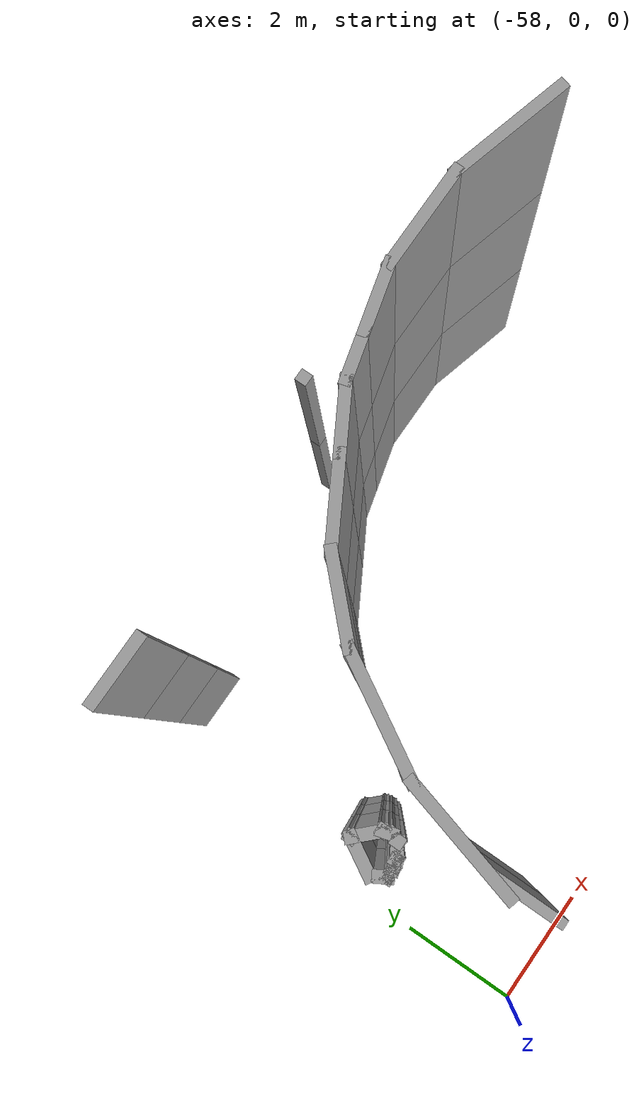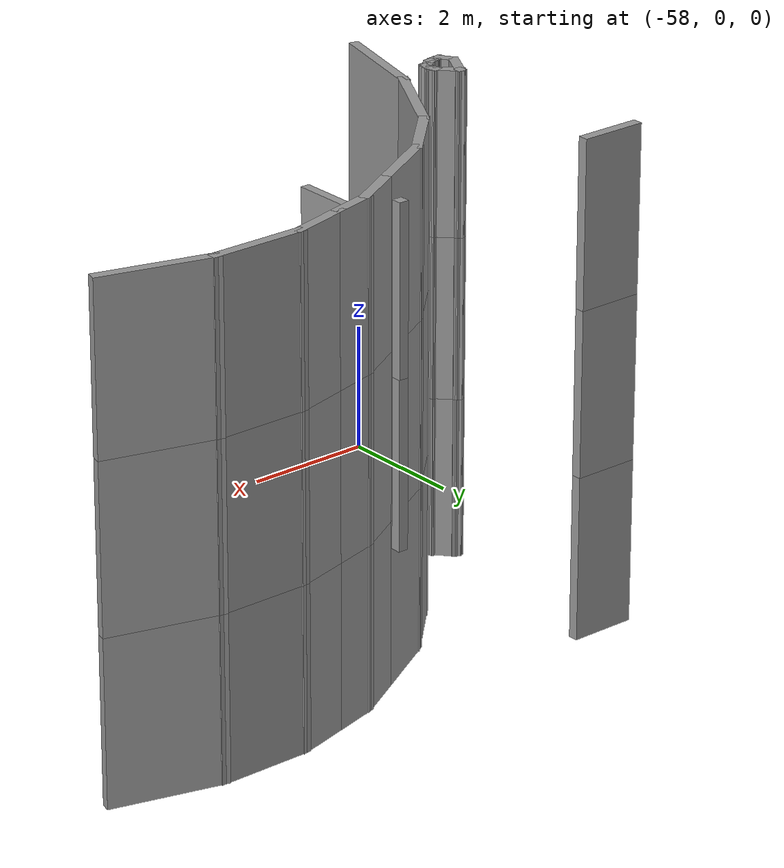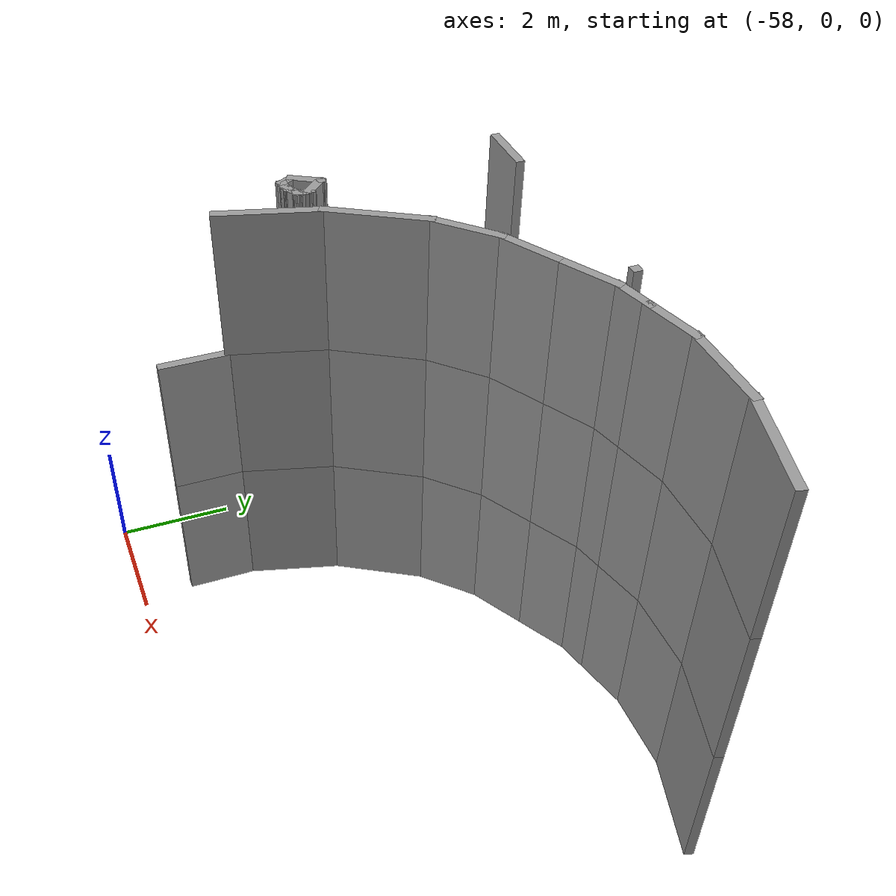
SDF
<sdf version="1.7">
 <model name="mapagazebo">
  <pose>-4.67869 9.01252 0 0 -0 0</pose>
  <link name="Wall_1036">
   <collision name="Wall_1036_Collision">
    <geometry><box><size>0.15 0.15 2.5</size></box></geometry>
    <pose>0 0 1.25 0 -0 0</pose>
   </collision>
   <visual name="Wall_1036_Visual">
    <pose>0 0 1.25 0 -0 0</pose>
    <geometry><box><size>0.15 0.15 2.5</size></box></geometry>
    <material>
     <script><uri>file://media/materials/scripts/gazebo.material</uri><name>Gazebo/Grey</name></script>
     <ambient>1 1 1 1</ambient>
    </material>
    <meta><layer>1</layer></meta>
   </visual>
   <pose>-48.1488 -1.86062 2.5 0 -0 0</pose>
  </link>
  <link name="Wall_112">
   <collision name="Wall_112_Collision">
    <geometry><box><size>1 0.15 2.5</size></box></geometry>
    <pose>0 0 1.25 0 -0 0</pose>
   </collision>
   <visual name="Wall_112_Visual">
    <pose>0 0 1.25 0 -0 0</pose>
    <geometry><box><size>1 0.15 2.5</size></box></geometry>
    <material>
     <script><uri>file://media/materials/scripts/gazebo.material</uri><name>Gazebo/Grey</name></script>
     <ambient>1 1 1 1</ambient>
    </material>
    <meta><layer>0</layer></meta>
   </visual>
   <pose>-51.9999 -2.0661 0 0 -0 0</pose>
  </link>
  <link name="Wall_1480">
   <collision name="Wall_1480_Collision">
    <geometry><box><size>1 0.15 2.5</size></box></geometry>
    <pose>0 0 1.25 0 -0 0</pose>
   </collision>
   <visual name="Wall_1480_Visual">
    <pose>0 0 1.25 0 -0 0</pose>
    <geometry><box><size>1 0.15 2.5</size></box></geometry>
    <material>
     <script><uri>file://media/materials/scripts/gazebo.material</uri><name>Gazebo/Grey</name></script>
     <ambient>1 1 1 1</ambient>
    </material>
    <meta><layer>2</layer></meta>
   </visual>
   <pose>-51.9999 -2.0661 5 0 -0 0</pose>
  </link>
  <link name="Wall_1522">
   <collision name="Wall_1522_Collision">
    <geometry><box><size>0.25 0.15 2.5</size></box></geometry>
    <pose>0 0 1.25 0 -0 0</pose>
   </collision>
   <visual name="Wall_1522_Visual">
    <pose>0 0 1.25 0 -0 0</pose>
    <geometry><box><size>0.25 0.15 2.5</size></box></geometry>
    <material>
     <script><uri>file://media/materials/scripts/gazebo.material</uri><name>Gazebo/Grey</name></script>
     <ambient>1 1 1 1</ambient>
    </material>
    <meta><layer>2</layer></meta>
   </visual>
   <pose>-52.1543 -5.71076 5 0 -0 -1.0472</pose>
  </link>
  <link name="Wall_1523">
   <collision name="Wall_1523_Collision">
    <geometry><box><size>0.15 0.15 2.5</size></box></geometry>
    <pose>0 0 1.25 0 -0 0</pose>
   </collision>
   <visual name="Wall_1523_Visual">
    <pose>0 0 1.25 0 -0 0</pose>
    <geometry><box><size>0.15 0.15 2.5</size></box></geometry>
    <material>
     <script><uri>file://media/materials/scripts/gazebo.material</uri><name>Gazebo/Grey</name></script>
     <ambient>1 1 1 1</ambient>
    </material>
    <meta><layer>2</layer></meta>
   </visual>
   <pose>-52.1293 -5.75406 5 0 -0 0</pose>
  </link>
  <link name="Wall_1524">
   <collision name="Wall_1524_Collision">
    <geometry><box><size>0.25 0.15 2.5</size></box></geometry>
    <pose>0 0 1.25 0 -0 0</pose>
   </collision>
   <visual name="Wall_1524_Visual">
    <pose>0 0 1.25 0 -0 0</pose>
    <geometry><box><size>0.25 0.15 2.5</size></box></geometry>
    <material>
     <script><uri>file://media/materials/scripts/gazebo.material</uri><name>Gazebo/Grey</name></script>
     <ambient>1 1 1 1</ambient>
    </material>
    <meta><layer>2</layer></meta>
   </visual>
   <pose>-52.0793 -5.75406 5 0 -0 0</pose>
  </link>
  <link name="Wall_1525">
   <collision name="Wall_1525_Collision">
    <geometry><box><size>0.25 0.15 2.5</size></box></geometry>
    <pose>0 0 1.25 0 -0 0</pose>
   </collision>
   <visual name="Wall_1525_Visual">
    <pose>0 0 1.25 0 -0 0</pose>
    <geometry><box><size>0.25 0.15 2.5</size></box></geometry>
    <material>
     <script><uri>file://media/materials/scripts/gazebo.material</uri><name>Gazebo/Grey</name></script>
     <ambient>1 1 1 1</ambient>
    </material>
    <meta><layer>2</layer></meta>
   </visual>
   <pose>-51.981 -5.74112 5 0 -0 0.261799</pose>
  </link>
  <link name="Wall_1526">
   <collision name="Wall_1526_Collision">
    <geometry><box><size>0.15 0.15 2.5</size></box></geometry>
    <pose>0 0 1.25 0 -0 0</pose>
   </collision>
   <visual name="Wall_1526_Visual">
    <pose>0 0 1.25 0 -0 0</pose>
    <geometry><box><size>0.15 0.15 2.5</size></box></geometry>
    <material>
     <script><uri>file://media/materials/scripts/gazebo.material</uri><name>Gazebo/Grey</name></script>
     <ambient>1 1 1 1</ambient>
    </material>
    <meta><layer>2</layer></meta>
   </visual>
   <pose>-51.9327 -5.72818 5 0 -0 0</pose>
  </link>
  <link name="Wall_1527">
   <collision name="Wall_1527_Collision">
    <geometry><box><size>0.15 0.15 2.5</size></box></geometry>
    <pose>0 0 1.25 0 -0 0</pose>
   </collision>
   <visual name="Wall_1527_Visual">
    <pose>0 0 1.25 0 -0 0</pose>
    <geometry><box><size>0.15 0.15 2.5</size></box></geometry>
    <material>
     <script><uri>file://media/materials/scripts/gazebo.material</uri><name>Gazebo/Grey</name></script>
     <ambient>1 1 1 1</ambient>
    </material>
    <meta><layer>2</layer></meta>
   </visual>
   <pose>-51.9327 -5.72818 5 0 -0 0</pose>
  </link>
  <link name="Wall_1528">
   <collision name="Wall_1528_Collision">
    <geometry><box><size>0.25 0.15 2.5</size></box></geometry>
    <pose>0 0 1.25 0 -0 0</pose>
   </collision>
   <visual name="Wall_1528_Visual">
    <pose>0 0 1.25 0 -0 0</pose>
    <geometry><box><size>0.25 0.15 2.5</size></box></geometry>
    <material>
     <script><uri>file://media/materials/scripts/gazebo.material</uri><name>Gazebo/Grey</name></script>
     <ambient>1 1 1 1</ambient>
    </material>
    <meta><layer>2</layer></meta>
   </visual>
   <pose>-51.8894 -5.70318 5 0 -0 0.523599</pose>
  </link>
  <link name="Wall_1529">
   <collision name="Wall_1529_Collision">
    <geometry><box><size>0.25 0.15 2.5</size></box></geometry>
    <pose>0 0 1.25 0 -0 0</pose>
   </collision>
   <visual name="Wall_1529_Visual">
    <pose>0 0 1.25 0 -0 0</pose>
    <geometry><box><size>0.25 0.15 2.5</size></box></geometry>
    <material>
     <script><uri>file://media/materials/scripts/gazebo.material</uri><name>Gazebo/Grey</name></script>
     <ambient>1 1 1 1</ambient>
    </material>
    <meta><layer>2</layer></meta>
   </visual>
   <pose>-51.8028 -5.65318 5 0 -0 0.523599</pose>
  </link>
  <link name="Wall_1530">
   <collision name="Wall_1530_Collision">
    <geometry><box><size>0.15 0.15 2.5</size></box></geometry>
    <pose>0 0 1.25 0 -0 0</pose>
   </collision>
   <visual name="Wall_1530_Visual">
    <pose>0 0 1.25 0 -0 0</pose>
    <geometry><box><size>0.15 0.15 2.5</size></box></geometry>
    <material>
     <script><uri>file://media/materials/scripts/gazebo.material</uri><name>Gazebo/Grey</name></script>
     <ambient>1 1 1 1</ambient>
    </material>
    <meta><layer>2</layer></meta>
   </visual>
   <pose>-51.7595 -5.62818 5 0 -0 0</pose>
  </link>
  <link name="Wall_1531">
   <collision name="Wall_1531_Collision">
    <geometry><box><size>0.25 0.15 2.5</size></box></geometry>
    <pose>0 0 1.25 0 -0 0</pose>
   </collision>
   <visual name="Wall_1531_Visual">
    <pose>0 0 1.25 0 -0 0</pose>
    <geometry><box><size>0.25 0.15 2.5</size></box></geometry>
    <material>
     <script><uri>file://media/materials/scripts/gazebo.material</uri><name>Gazebo/Grey</name></script>
     <ambient>1 1 1 1</ambient>
    </material>
    <meta><layer>2</layer></meta>
   </visual>
   <pose>-51.7466 -5.57988 5 0 -0 1.309</pose>
  </link>
  <link name="Wall_1532">
   <collision name="Wall_1532_Collision">
    <geometry><box><size>0.25 0.15 2.5</size></box></geometry>
    <pose>0 0 1.25 0 -0 0</pose>
   </collision>
   <visual name="Wall_1532_Visual">
    <pose>0 0 1.25 0 -0 0</pose>
    <geometry><box><size>0.25 0.15 2.5</size></box></geometry>
    <material>
     <script><uri>file://media/materials/scripts/gazebo.material</uri><name>Gazebo/Grey</name></script>
     <ambient>1 1 1 1</ambient>
    </material>
    <meta><layer>2</layer></meta>
   </visual>
   <pose>-51.7466 -5.48329 5 0 -0 1.8326</pose>
  </link>
  <link name="Wall_1533">
   <collision name="Wall_1533_Collision">
    <geometry><box><size>0.15 0.15 2.5</size></box></geometry>
    <pose>0 0 1.25 0 -0 0</pose>
   </collision>
   <visual name="Wall_1533_Visual">
    <pose>0 0 1.25 0 -0 0</pose>
    <geometry><box><size>0.15 0.15 2.5</size></box></geometry>
    <material>
     <script><uri>file://media/materials/scripts/gazebo.material</uri><name>Gazebo/Grey</name></script>
     <ambient>1 1 1 1</ambient>
    </material>
    <meta><layer>2</layer></meta>
   </visual>
   <pose>-51.7595 -5.43499 5 0 -0 0</pose>
  </link>
  <link name="Wall_1534">
   <collision name="Wall_1534_Collision">
    <geometry><box><size>0.5 0.15 2.5</size></box></geometry>
    <pose>0 0 1.25 0 -0 0</pose>
   </collision>
   <visual name="Wall_1534_Visual">
    <pose>0 0 1.25 0 -0 0</pose>
    <geometry><box><size>0.5 0.15 2.5</size></box></geometry>
    <material>
     <script><uri>file://media/materials/scripts/gazebo.material</uri><name>Gazebo/Grey</name></script>
     <ambient>1 1 1 1</ambient>
    </material>
    <meta><layer>2</layer></meta>
   </visual>
   <pose>-51.8833 -5.31125 5 0 -0 2.35619</pose>
  </link>
  <link name="Wall_1535">
   <collision name="Wall_1535_Collision">
    <geometry><box><size>0.15 0.15 2.5</size></box></geometry>
    <pose>0 0 1.25 0 -0 0</pose>
   </collision>
   <visual name="Wall_1535_Visual">
    <pose>0 0 1.25 0 -0 0</pose>
    <geometry><box><size>0.15 0.15 2.5</size></box></geometry>
    <material>
     <script><uri>file://media/materials/scripts/gazebo.material</uri><name>Gazebo/Grey</name></script>
     <ambient>1 1 1 1</ambient>
    </material>
    <meta><layer>2</layer></meta>
   </visual>
   <pose>-52.007 -5.18751 5 0 -0 0</pose>
  </link>
  <link name="Wall_1536">
   <collision name="Wall_1536_Collision">
    <geometry><box><size>0.15 0.15 2.5</size></box></geometry>
    <pose>0 0 1.25 0 -0 0</pose>
   </collision>
   <visual name="Wall_1536_Visual">
    <pose>0 0 1.25 0 -0 0</pose>
    <geometry><box><size>0.15 0.15 2.5</size></box></geometry>
    <material>
     <script><uri>file://media/materials/scripts/gazebo.material</uri><name>Gazebo/Grey</name></script>
     <ambient>1 1 1 1</ambient>
    </material>
    <meta><layer>2</layer></meta>
   </visual>
   <pose>-52.007 -5.18751 5 0 -0 0</pose>
  </link>
  <link name="Wall_1537">
   <collision name="Wall_1537_Collision">
    <geometry><box><size>0.601825 0.15 2.5</size></box></geometry>
    <pose>0 0 1.25 0 -0 0</pose>
   </collision>
   <visual name="Wall_1537_Visual">
    <pose>0 0 1.25 0 -0 0</pose>
    <geometry><box><size>0.601825 0.15 2.5</size></box></geometry>
    <material>
     <script><uri>file://media/materials/scripts/gazebo.material</uri><name>Gazebo/Grey</name></script>
     <ambient>1 1 1 1</ambient>
    </material>
    <meta><layer>2</layer></meta>
   </visual>
   <pose>-52.1182 -5.38418 5 0 -0 -2.08521</pose>
  </link>
  <link name="Wall_1540">
   <collision name="Wall_1540_Collision">
    <geometry><box><size>1.75 0.15 2.5</size></box></geometry>
    <pose>0 0 1.25 0 -0 0</pose>
   </collision>
   <visual name="Wall_1540_Visual">
    <pose>0 0 1.25 0 -0 0</pose>
    <geometry><box><size>1.75 0.15 2.5</size></box></geometry>
    <material>
     <script><uri>file://media/materials/scripts/gazebo.material</uri><name>Gazebo/Grey</name></script>
     <ambient>1 1 1 1</ambient>
    </material>
    <meta><layer>2</layer></meta>
   </visual>
   <pose>-51.368 -6.17376 5 0 -0 1.309</pose>
  </link>
  <link name="Wall_1541">
   <collision name="Wall_1541_Collision">
    <geometry><box><size>1.75 0.15 2.5</size></box></geometry>
    <pose>0 0 1.25 0 -0 0</pose>
   </collision>
   <visual name="Wall_1541_Visual">
    <pose>0 0 1.25 0 -0 0</pose>
    <geometry><box><size>1.75 0.15 2.5</size></box></geometry>
    <material>
     <script><uri>file://media/materials/scripts/gazebo.material</uri><name>Gazebo/Grey</name></script>
     <ambient>1 1 1 1</ambient>
    </material>
    <meta><layer>2</layer></meta>
   </visual>
   <pose>-50.761 -4.7082 5 0 -0 1.0472</pose>
  </link>
  <link name="Wall_1542">
   <collision name="Wall_1542_Collision">
    <geometry><box><size>1.25 0.15 2.5</size></box></geometry>
    <pose>0 0 1.25 0 -0 0</pose>
   </collision>
   <visual name="Wall_1542_Visual">
    <pose>0 0 1.25 0 -0 0</pose>
    <geometry><box><size>1.25 0.15 2.5</size></box></geometry>
    <material>
     <script><uri>file://media/materials/scripts/gazebo.material</uri><name>Gazebo/Grey</name></script>
     <ambient>1 1 1 1</ambient>
    </material>
    <meta><layer>2</layer></meta>
   </visual>
   <pose>-49.9721 -3.62647 5 0 -0 0.785398</pose>
  </link>
  <link name="Wall_1543">
   <collision name="Wall_1543_Collision">
    <geometry><box><size>1.25 0.15 2.5</size></box></geometry>
    <pose>0 0 1.25 0 -0 0</pose>
   </collision>
   <visual name="Wall_1543_Visual">
    <pose>0 0 1.25 0 -0 0</pose>
    <geometry><box><size>1.25 0.15 2.5</size></box></geometry>
    <material>
     <script><uri>file://media/materials/scripts/gazebo.material</uri><name>Gazebo/Grey</name></script>
     <ambient>1 1 1 1</ambient>
    </material>
    <meta><layer>2</layer></meta>
   </visual>
   <pose>-49.1069 -2.96256 5 0 -0 0.523599</pose>
  </link>
  <link name="Wall_1544">
   <collision name="Wall_1544_Collision">
    <geometry><box><size>1 0.15 2.5</size></box></geometry>
    <pose>0 0 1.25 0 -0 0</pose>
   </collision>
   <visual name="Wall_1544_Visual">
    <pose>0 0 1.25 0 -0 0</pose>
    <geometry><box><size>1 0.15 2.5</size></box></geometry>
    <material>
     <script><uri>file://media/materials/scripts/gazebo.material</uri><name>Gazebo/Grey</name></script>
     <ambient>1 1 1 1</ambient>
    </material>
    <meta><layer>2</layer></meta>
   </visual>
   <pose>-48.2625 -2.47506 5 0 -0 0.523599</pose>
  </link>
  <link name="Wall_1545">
   <collision name="Wall_1545_Collision">
    <geometry><box><size>0.75 0.15 2.5</size></box></geometry>
    <pose>0 0 1.25 0 -0 0</pose>
   </collision>
   <visual name="Wall_1545_Visual">
    <pose>0 0 1.25 0 -0 0</pose>
    <geometry><box><size>0.75 0.15 2.5</size></box></geometry>
    <material>
     <script><uri>file://media/materials/scripts/gazebo.material</uri><name>Gazebo/Grey</name></script>
     <ambient>1 1 1 1</ambient>
    </material>
    <meta><layer>2</layer></meta>
   </visual>
   <pose>-47.6046 -2.18491 5 0 -0 0.261799</pose>
  </link>
  <link name="Wall_1546">
   <collision name="Wall_1546_Collision">
    <geometry><box><size>1 0.15 2.5</size></box></geometry>
    <pose>0 0 1.25 0 -0 0</pose>
   </collision>
   <visual name="Wall_1546_Visual">
    <pose>0 0 1.25 0 -0 0</pose>
    <geometry><box><size>1 0.15 2.5</size></box></geometry>
    <material>
     <script><uri>file://media/materials/scripts/gazebo.material</uri><name>Gazebo/Grey</name></script>
     <ambient>1 1 1 1</ambient>
    </material>
    <meta><layer>2</layer></meta>
   </visual>
   <pose>-46.9043 -1.99727 5 0 -0 0.261799</pose>
  </link>
  <link name="Wall_1547">
   <collision name="Wall_1547_Collision">
    <geometry><box><size>1.5 0.15 2.5</size></box></geometry>
    <pose>0 0 1.25 0 -0 0</pose>
   </collision>
   <visual name="Wall_1547_Visual">
    <pose>0 0 1.25 0 -0 0</pose>
    <geometry><box><size>1.5 0.15 2.5</size></box></geometry>
    <material>
     <script><uri>file://media/materials/scripts/gazebo.material</uri><name>Gazebo/Grey</name></script>
     <ambient>1 1 1 1</ambient>
    </material>
    <meta><layer>2</layer></meta>
   </visual>
   <pose>-45.8188 -1.88727 5 0 -0 0</pose>
  </link>
  <link name="Wall_1548">
   <collision name="Wall_1548_Collision">
    <geometry><box><size>1.75 0.15 2.5</size></box></geometry>
    <pose>0 0 1.25 0 -0 0</pose>
   </collision>
   <visual name="Wall_1548_Visual">
    <pose>0 0 1.25 0 -0 0</pose>
    <geometry><box><size>1.75 0.15 2.5</size></box></geometry>
    <material>
     <script><uri>file://media/materials/scripts/gazebo.material</uri><name>Gazebo/Grey</name></script>
     <ambient>1 1 1 1</ambient>
    </material>
    <meta><layer>2</layer></meta>
   </visual>
   <pose>-44.3711 -2.09432 5 0 -0 -0.261799</pose>
  </link>
  <link name="Wall_165">
   <collision name="Wall_165_Collision">
    <geometry><box><size>0.25 0.15 2.5</size></box></geometry>
    <pose>0 0 1.25 0 -0 0</pose>
   </collision>
   <visual name="Wall_165_Visual">
    <pose>0 0 1.25 0 -0 0</pose>
    <geometry><box><size>0.25 0.15 2.5</size></box></geometry>
    <material>
     <script><uri>file://media/materials/scripts/gazebo.material</uri><name>Gazebo/Grey</name></script>
     <ambient>1 1 1 1</ambient>
    </material>
    <meta><layer>0</layer></meta>
   </visual>
   <pose>-52.1543 -5.71076 0 0 -0 -1.0472</pose>
  </link>
  <link name="Wall_166">
   <collision name="Wall_166_Collision">
    <geometry><box><size>0.15 0.15 2.5</size></box></geometry>
    <pose>0 0 1.25 0 -0 0</pose>
   </collision>
   <visual name="Wall_166_Visual">
    <pose>0 0 1.25 0 -0 0</pose>
    <geometry><box><size>0.15 0.15 2.5</size></box></geometry>
    <material>
     <script><uri>file://media/materials/scripts/gazebo.material</uri><name>Gazebo/Grey</name></script>
     <ambient>1 1 1 1</ambient>
    </material>
    <meta><layer>0</layer></meta>
   </visual>
   <pose>-52.1293 -5.75406 0 0 -0 0</pose>
  </link>
  <link name="Wall_1660">
   <collision name="Wall_1660_Collision">
    <geometry><box><size>0.15 0.15 2.5</size></box></geometry>
    <pose>0 0 1.25 0 -0 0</pose>
   </collision>
   <visual name="Wall_1660_Visual">
    <pose>0 0 1.25 0 -0 0</pose>
    <geometry><box><size>0.15 0.15 2.5</size></box></geometry>
    <material>
     <script><uri>file://media/materials/scripts/gazebo.material</uri><name>Gazebo/Grey</name></script>
     <ambient>1 1 1 1</ambient>
    </material>
    <meta><layer>2</layer></meta>
   </visual>
   <pose>-48.1488 -1.86062 5 0 -0 0</pose>
  </link>
  <link name="Wall_167">
   <collision name="Wall_167_Collision">
    <geometry><box><size>0.25 0.15 2.5</size></box></geometry>
    <pose>0 0 1.25 0 -0 0</pose>
   </collision>
   <visual name="Wall_167_Visual">
    <pose>0 0 1.25 0 -0 0</pose>
    <geometry><box><size>0.25 0.15 2.5</size></box></geometry>
    <material>
     <script><uri>file://media/materials/scripts/gazebo.material</uri><name>Gazebo/Grey</name></script>
     <ambient>1 1 1 1</ambient>
    </material>
    <meta><layer>0</layer></meta>
   </visual>
   <pose>-52.0793 -5.75406 0 0 -0 0</pose>
  </link>
  <link name="Wall_168">
   <collision name="Wall_168_Collision">
    <geometry><box><size>0.25 0.15 2.5</size></box></geometry>
    <pose>0 0 1.25 0 -0 0</pose>
   </collision>
   <visual name="Wall_168_Visual">
    <pose>0 0 1.25 0 -0 0</pose>
    <geometry><box><size>0.25 0.15 2.5</size></box></geometry>
    <material>
     <script><uri>file://media/materials/scripts/gazebo.material</uri><name>Gazebo/Grey</name></script>
     <ambient>1 1 1 1</ambient>
    </material>
    <meta><layer>0</layer></meta>
   </visual>
   <pose>-51.981 -5.74112 0 0 -0 0.261799</pose>
  </link>
  <link name="Wall_169">
   <collision name="Wall_169_Collision">
    <geometry><box><size>0.15 0.15 2.5</size></box></geometry>
    <pose>0 0 1.25 0 -0 0</pose>
   </collision>
   <visual name="Wall_169_Visual">
    <pose>0 0 1.25 0 -0 0</pose>
    <geometry><box><size>0.15 0.15 2.5</size></box></geometry>
    <material>
     <script><uri>file://media/materials/scripts/gazebo.material</uri><name>Gazebo/Grey</name></script>
     <ambient>1 1 1 1</ambient>
    </material>
    <meta><layer>0</layer></meta>
   </visual>
   <pose>-51.9327 -5.72818 0 0 -0 0</pose>
  </link>
  <link name="Wall_170">
   <collision name="Wall_170_Collision">
    <geometry><box><size>0.15 0.15 2.5</size></box></geometry>
    <pose>0 0 1.25 0 -0 0</pose>
   </collision>
   <visual name="Wall_170_Visual">
    <pose>0 0 1.25 0 -0 0</pose>
    <geometry><box><size>0.15 0.15 2.5</size></box></geometry>
    <material>
     <script><uri>file://media/materials/scripts/gazebo.material</uri><name>Gazebo/Grey</name></script>
     <ambient>1 1 1 1</ambient>
    </material>
    <meta><layer>0</layer></meta>
   </visual>
   <pose>-51.9327 -5.72818 0 0 -0 0</pose>
  </link>
  <link name="Wall_171">
   <collision name="Wall_171_Collision">
    <geometry><box><size>0.25 0.15 2.5</size></box></geometry>
    <pose>0 0 1.25 0 -0 0</pose>
   </collision>
   <visual name="Wall_171_Visual">
    <pose>0 0 1.25 0 -0 0</pose>
    <geometry><box><size>0.25 0.15 2.5</size></box></geometry>
    <material>
     <script><uri>file://media/materials/scripts/gazebo.material</uri><name>Gazebo/Grey</name></script>
     <ambient>1 1 1 1</ambient>
    </material>
    <meta><layer>0</layer></meta>
   </visual>
   <pose>-51.8894 -5.70318 0 0 -0 0.523599</pose>
  </link>
  <link name="Wall_172">
   <collision name="Wall_172_Collision">
    <geometry><box><size>0.25 0.15 2.5</size></box></geometry>
    <pose>0 0 1.25 0 -0 0</pose>
   </collision>
   <visual name="Wall_172_Visual">
    <pose>0 0 1.25 0 -0 0</pose>
    <geometry><box><size>0.25 0.15 2.5</size></box></geometry>
    <material>
     <script><uri>file://media/materials/scripts/gazebo.material</uri><name>Gazebo/Grey</name></script>
     <ambient>1 1 1 1</ambient>
    </material>
    <meta><layer>0</layer></meta>
   </visual>
   <pose>-51.8028 -5.65318 0 0 -0 0.523599</pose>
  </link>
  <link name="Wall_173">
   <collision name="Wall_173_Collision">
    <geometry><box><size>0.15 0.15 2.5</size></box></geometry>
    <pose>0 0 1.25 0 -0 0</pose>
   </collision>
   <visual name="Wall_173_Visual">
    <pose>0 0 1.25 0 -0 0</pose>
    <geometry><box><size>0.15 0.15 2.5</size></box></geometry>
    <material>
     <script><uri>file://media/materials/scripts/gazebo.material</uri><name>Gazebo/Grey</name></script>
     <ambient>1 1 1 1</ambient>
    </material>
    <meta><layer>0</layer></meta>
   </visual>
   <pose>-51.7595 -5.62818 0 0 -0 0</pose>
  </link>
  <link name="Wall_174">
   <collision name="Wall_174_Collision">
    <geometry><box><size>0.25 0.15 2.5</size></box></geometry>
    <pose>0 0 1.25 0 -0 0</pose>
   </collision>
   <visual name="Wall_174_Visual">
    <pose>0 0 1.25 0 -0 0</pose>
    <geometry><box><size>0.25 0.15 2.5</size></box></geometry>
    <material>
     <script><uri>file://media/materials/scripts/gazebo.material</uri><name>Gazebo/Grey</name></script>
     <ambient>1 1 1 1</ambient>
    </material>
    <meta><layer>0</layer></meta>
   </visual>
   <pose>-51.7466 -5.57988 0 0 -0 1.309</pose>
  </link>
  <link name="Wall_175">
   <collision name="Wall_175_Collision">
    <geometry><box><size>0.25 0.15 2.5</size></box></geometry>
    <pose>0 0 1.25 0 -0 0</pose>
   </collision>
   <visual name="Wall_175_Visual">
    <pose>0 0 1.25 0 -0 0</pose>
    <geometry><box><size>0.25 0.15 2.5</size></box></geometry>
    <material>
     <script><uri>file://media/materials/scripts/gazebo.material</uri><name>Gazebo/Grey</name></script>
     <ambient>1 1 1 1</ambient>
    </material>
    <meta><layer>0</layer></meta>
   </visual>
   <pose>-51.7466 -5.48329 0 0 -0 1.8326</pose>
  </link>
  <link name="Wall_176">
   <collision name="Wall_176_Collision">
    <geometry><box><size>0.15 0.15 2.5</size></box></geometry>
    <pose>0 0 1.25 0 -0 0</pose>
   </collision>
   <visual name="Wall_176_Visual">
    <pose>0 0 1.25 0 -0 0</pose>
    <geometry><box><size>0.15 0.15 2.5</size></box></geometry>
    <material>
     <script><uri>file://media/materials/scripts/gazebo.material</uri><name>Gazebo/Grey</name></script>
     <ambient>1 1 1 1</ambient>
    </material>
    <meta><layer>0</layer></meta>
   </visual>
   <pose>-51.7595 -5.43499 0 0 -0 0</pose>
  </link>
  <link name="Wall_177">
   <collision name="Wall_177_Collision">
    <geometry><box><size>0.5 0.15 2.5</size></box></geometry>
    <pose>0 0 1.25 0 -0 0</pose>
   </collision>
   <visual name="Wall_177_Visual">
    <pose>0 0 1.25 0 -0 0</pose>
    <geometry><box><size>0.5 0.15 2.5</size></box></geometry>
    <material>
     <script><uri>file://media/materials/scripts/gazebo.material</uri><name>Gazebo/Grey</name></script>
     <ambient>1 1 1 1</ambient>
    </material>
    <meta><layer>0</layer></meta>
   </visual>
   <pose>-51.8833 -5.31125 0 0 -0 2.35619</pose>
  </link>
  <link name="Wall_178">
   <collision name="Wall_178_Collision">
    <geometry><box><size>0.15 0.15 2.5</size></box></geometry>
    <pose>0 0 1.25 0 -0 0</pose>
   </collision>
   <visual name="Wall_178_Visual">
    <pose>0 0 1.25 0 -0 0</pose>
    <geometry><box><size>0.15 0.15 2.5</size></box></geometry>
    <material>
     <script><uri>file://media/materials/scripts/gazebo.material</uri><name>Gazebo/Grey</name></script>
     <ambient>1 1 1 1</ambient>
    </material>
    <meta><layer>0</layer></meta>
   </visual>
   <pose>-52.007 -5.18751 0 0 -0 0</pose>
  </link>
  <link name="Wall_179">
   <collision name="Wall_179_Collision">
    <geometry><box><size>0.15 0.15 2.5</size></box></geometry>
    <pose>0 0 1.25 0 -0 0</pose>
   </collision>
   <visual name="Wall_179_Visual">
    <pose>0 0 1.25 0 -0 0</pose>
    <geometry><box><size>0.15 0.15 2.5</size></box></geometry>
    <material>
     <script><uri>file://media/materials/scripts/gazebo.material</uri><name>Gazebo/Grey</name></script>
     <ambient>1 1 1 1</ambient>
    </material>
    <meta><layer>0</layer></meta>
   </visual>
   <pose>-52.007 -5.18751 0 0 -0 0</pose>
  </link>
  <link name="Wall_180">
   <collision name="Wall_180_Collision">
    <geometry><box><size>0.601825 0.15 2.5</size></box></geometry>
    <pose>0 0 1.25 0 -0 0</pose>
   </collision>
   <visual name="Wall_180_Visual">
    <pose>0 0 1.25 0 -0 0</pose>
    <geometry><box><size>0.601825 0.15 2.5</size></box></geometry>
    <material>
     <script><uri>file://media/materials/scripts/gazebo.material</uri><name>Gazebo/Grey</name></script>
     <ambient>1 1 1 1</ambient>
    </material>
    <meta><layer>0</layer></meta>
   </visual>
   <pose>-52.1182 -5.38418 0 0 -0 -2.08521</pose>
  </link>
  <link name="Wall_183">
   <collision name="Wall_183_Collision">
    <geometry><box><size>1.25 0.15 2.5</size></box></geometry>
    <pose>0 0 1.25 0 -0 0</pose>
   </collision>
   <visual name="Wall_183_Visual">
    <pose>0 0 1.25 0 -0 0</pose>
    <geometry><box><size>1.25 0.15 2.5</size></box></geometry>
    <material>
     <script><uri>file://media/materials/scripts/gazebo.material</uri><name>Gazebo/Grey</name></script>
     <ambient>1 1 1 1</ambient>
    </material>
    <meta><layer>0</layer></meta>
   </visual>
   <pose>-51.5751 -7.4965 0 0 -0 1.5708</pose>
  </link>
  <link name="Wall_184">
   <collision name="Wall_184_Collision">
    <geometry><box><size>1.75 0.15 2.5</size></box></geometry>
    <pose>0 0 1.25 0 -0 0</pose>
   </collision>
   <visual name="Wall_184_Visual">
    <pose>0 0 1.25 0 -0 0</pose>
    <geometry><box><size>1.75 0.15 2.5</size></box></geometry>
    <material>
     <script><uri>file://media/materials/scripts/gazebo.material</uri><name>Gazebo/Grey</name></script>
     <ambient>1 1 1 1</ambient>
    </material>
    <meta><layer>0</layer></meta>
   </visual>
   <pose>-51.368 -6.17376 0 0 -0 1.309</pose>
  </link>
  <link name="Wall_185">
   <collision name="Wall_185_Collision">
    <geometry><box><size>1.75 0.15 2.5</size></box></geometry>
    <pose>0 0 1.25 0 -0 0</pose>
   </collision>
   <visual name="Wall_185_Visual">
    <pose>0 0 1.25 0 -0 0</pose>
    <geometry><box><size>1.75 0.15 2.5</size></box></geometry>
    <material>
     <script><uri>file://media/materials/scripts/gazebo.material</uri><name>Gazebo/Grey</name></script>
     <ambient>1 1 1 1</ambient>
    </material>
    <meta><layer>0</layer></meta>
   </visual>
   <pose>-50.761 -4.7082 0 0 -0 1.0472</pose>
  </link>
  <link name="Wall_186">
   <collision name="Wall_186_Collision">
    <geometry><box><size>1.25 0.15 2.5</size></box></geometry>
    <pose>0 0 1.25 0 -0 0</pose>
   </collision>
   <visual name="Wall_186_Visual">
    <pose>0 0 1.25 0 -0 0</pose>
    <geometry><box><size>1.25 0.15 2.5</size></box></geometry>
    <material>
     <script><uri>file://media/materials/scripts/gazebo.material</uri><name>Gazebo/Grey</name></script>
     <ambient>1 1 1 1</ambient>
    </material>
    <meta><layer>0</layer></meta>
   </visual>
   <pose>-49.9721 -3.62647 0 0 -0 0.785398</pose>
  </link>
  <link name="Wall_187">
   <collision name="Wall_187_Collision">
    <geometry><box><size>1.25 0.15 2.5</size></box></geometry>
    <pose>0 0 1.25 0 -0 0</pose>
   </collision>
   <visual name="Wall_187_Visual">
    <pose>0 0 1.25 0 -0 0</pose>
    <geometry><box><size>1.25 0.15 2.5</size></box></geometry>
    <material>
     <script><uri>file://media/materials/scripts/gazebo.material</uri><name>Gazebo/Grey</name></script>
     <ambient>1 1 1 1</ambient>
    </material>
    <meta><layer>0</layer></meta>
   </visual>
   <pose>-49.1069 -2.96256 0 0 -0 0.523599</pose>
  </link>
  <link name="Wall_188">
   <collision name="Wall_188_Collision">
    <geometry><box><size>1 0.15 2.5</size></box></geometry>
    <pose>0 0 1.25 0 -0 0</pose>
   </collision>
   <visual name="Wall_188_Visual">
    <pose>0 0 1.25 0 -0 0</pose>
    <geometry><box><size>1 0.15 2.5</size></box></geometry>
    <material>
     <script><uri>file://media/materials/scripts/gazebo.material</uri><name>Gazebo/Grey</name></script>
     <ambient>1 1 1 1</ambient>
    </material>
    <meta><layer>0</layer></meta>
   </visual>
   <pose>-48.2625 -2.47506 0 0 -0 0.523599</pose>
  </link>
  <link name="Wall_189">
   <collision name="Wall_189_Collision">
    <geometry><box><size>0.75 0.15 2.5</size></box></geometry>
    <pose>0 0 1.25 0 -0 0</pose>
   </collision>
   <visual name="Wall_189_Visual">
    <pose>0 0 1.25 0 -0 0</pose>
    <geometry><box><size>0.75 0.15 2.5</size></box></geometry>
    <material>
     <script><uri>file://media/materials/scripts/gazebo.material</uri><name>Gazebo/Grey</name></script>
     <ambient>1 1 1 1</ambient>
    </material>
    <meta><layer>0</layer></meta>
   </visual>
   <pose>-47.6046 -2.18491 0 0 -0 0.261799</pose>
  </link>
  <link name="Wall_192">
   <collision name="Wall_192_Collision">
    <geometry><box><size>1 0.15 2.5</size></box></geometry>
    <pose>0 0 1.25 0 -0 0</pose>
   </collision>
   <visual name="Wall_192_Visual">
    <pose>0 0 1.25 0 -0 0</pose>
    <geometry><box><size>1 0.15 2.5</size></box></geometry>
    <material>
     <script><uri>file://media/materials/scripts/gazebo.material</uri><name>Gazebo/Grey</name></script>
     <ambient>1 1 1 1</ambient>
    </material>
    <meta><layer>0</layer></meta>
   </visual>
   <pose>-46.9043 -1.99727 0 0 -0 0.261799</pose>
  </link>
  <link name="Wall_193">
   <collision name="Wall_193_Collision">
    <geometry><box><size>1.5 0.15 2.5</size></box></geometry>
    <pose>0 0 1.25 0 -0 0</pose>
   </collision>
   <visual name="Wall_193_Visual">
    <pose>0 0 1.25 0 -0 0</pose>
    <geometry><box><size>1.5 0.15 2.5</size></box></geometry>
    <material>
     <script><uri>file://media/materials/scripts/gazebo.material</uri><name>Gazebo/Grey</name></script>
     <ambient>1 1 1 1</ambient>
    </material>
    <meta><layer>0</layer></meta>
   </visual>
   <pose>-45.8188 -1.88727 0 0 -0 0</pose>
  </link>
  <link name="Wall_194">
   <collision name="Wall_194_Collision">
    <geometry><box><size>1.75 0.15 2.5</size></box></geometry>
    <pose>0 0 1.25 0 -0 0</pose>
   </collision>
   <visual name="Wall_194_Visual">
    <pose>0 0 1.25 0 -0 0</pose>
    <geometry><box><size>1.75 0.15 2.5</size></box></geometry>
    <material>
     <script><uri>file://media/materials/scripts/gazebo.material</uri><name>Gazebo/Grey</name></script>
     <ambient>1 1 1 1</ambient>
    </material>
    <meta><layer>0</layer></meta>
   </visual>
   <pose>-44.3711 -2.09433 0 0 -0 -0.261799</pose>
  </link>
  <link name="Wall_856">
   <collision name="Wall_856_Collision">
    <geometry><box><size>1 0.15 2.5</size></box></geometry>
    <pose>0 0 1.25 0 -0 0</pose>
   </collision>
   <visual name="Wall_856_Visual">
    <pose>0 0 1.25 0 -0 0</pose>
    <geometry><box><size>1 0.15 2.5</size></box></geometry>
    <material>
     <script><uri>file://media/materials/scripts/gazebo.material</uri><name>Gazebo/Grey</name></script>
     <ambient>1 1 1 1</ambient>
    </material>
    <meta><layer>1</layer></meta>
   </visual>
   <pose>-51.9999 -2.0661 2.5 0 -0 0</pose>
  </link>
  <link name="Wall_897">
   <collision name="Wall_897_Collision">
    <geometry><box><size>0.25 0.15 2.5</size></box></geometry>
    <pose>0 0 1.25 0 -0 0</pose>
   </collision>
   <visual name="Wall_897_Visual">
    <pose>0 0 1.25 0 -0 0</pose>
    <geometry><box><size>0.25 0.15 2.5</size></box></geometry>
    <material>
     <script><uri>file://media/materials/scripts/gazebo.material</uri><name>Gazebo/Grey</name></script>
     <ambient>1 1 1 1</ambient>
    </material>
    <meta><layer>1</layer></meta>
   </visual>
   <pose>-52.2043 -5.62416 2.5 0 -0 -1.0472</pose>
  </link>
  <link name="Wall_898">
   <collision name="Wall_898_Collision">
    <geometry><box><size>0.25 0.15 2.5</size></box></geometry>
    <pose>0 0 1.25 0 -0 0</pose>
   </collision>
   <visual name="Wall_898_Visual">
    <pose>0 0 1.25 0 -0 0</pose>
    <geometry><box><size>0.25 0.15 2.5</size></box></geometry>
    <material>
     <script><uri>file://media/materials/scripts/gazebo.material</uri><name>Gazebo/Grey</name></script>
     <ambient>1 1 1 1</ambient>
    </material>
    <meta><layer>1</layer></meta>
   </visual>
   <pose>-52.1543 -5.71076 2.5 0 -0 -1.0472</pose>
  </link>
  <link name="Wall_899">
   <collision name="Wall_899_Collision">
    <geometry><box><size>0.15 0.15 2.5</size></box></geometry>
    <pose>0 0 1.25 0 -0 0</pose>
   </collision>
   <visual name="Wall_899_Visual">
    <pose>0 0 1.25 0 -0 0</pose>
    <geometry><box><size>0.15 0.15 2.5</size></box></geometry>
    <material>
     <script><uri>file://media/materials/scripts/gazebo.material</uri><name>Gazebo/Grey</name></script>
     <ambient>1 1 1 1</ambient>
    </material>
    <meta><layer>1</layer></meta>
   </visual>
   <pose>-52.1293 -5.75406 2.5 0 -0 0</pose>
  </link>
  <link name="Wall_900">
   <collision name="Wall_900_Collision">
    <geometry><box><size>0.25 0.15 2.5</size></box></geometry>
    <pose>0 0 1.25 0 -0 0</pose>
   </collision>
   <visual name="Wall_900_Visual">
    <pose>0 0 1.25 0 -0 0</pose>
    <geometry><box><size>0.25 0.15 2.5</size></box></geometry>
    <material>
     <script><uri>file://media/materials/scripts/gazebo.material</uri><name>Gazebo/Grey</name></script>
     <ambient>1 1 1 1</ambient>
    </material>
    <meta><layer>1</layer></meta>
   </visual>
   <pose>-52.0793 -5.75406 2.5 0 -0 0</pose>
  </link>
  <link name="Wall_901">
   <collision name="Wall_901_Collision">
    <geometry><box><size>0.25 0.15 2.5</size></box></geometry>
    <pose>0 0 1.25 0 -0 0</pose>
   </collision>
   <visual name="Wall_901_Visual">
    <pose>0 0 1.25 0 -0 0</pose>
    <geometry><box><size>0.25 0.15 2.5</size></box></geometry>
    <material>
     <script><uri>file://media/materials/scripts/gazebo.material</uri><name>Gazebo/Grey</name></script>
     <ambient>1 1 1 1</ambient>
    </material>
    <meta><layer>1</layer></meta>
   </visual>
   <pose>-51.981 -5.74112 2.5 0 -0 0.261799</pose>
  </link>
  <link name="Wall_902">
   <collision name="Wall_902_Collision">
    <geometry><box><size>0.15 0.15 2.5</size></box></geometry>
    <pose>0 0 1.25 0 -0 0</pose>
   </collision>
   <visual name="Wall_902_Visual">
    <pose>0 0 1.25 0 -0 0</pose>
    <geometry><box><size>0.15 0.15 2.5</size></box></geometry>
    <material>
     <script><uri>file://media/materials/scripts/gazebo.material</uri><name>Gazebo/Grey</name></script>
     <ambient>1 1 1 1</ambient>
    </material>
    <meta><layer>1</layer></meta>
   </visual>
   <pose>-51.9327 -5.72818 2.5 0 -0 0</pose>
  </link>
  <link name="Wall_903">
   <collision name="Wall_903_Collision">
    <geometry><box><size>0.15 0.15 2.5</size></box></geometry>
    <pose>0 0 1.25 0 -0 0</pose>
   </collision>
   <visual name="Wall_903_Visual">
    <pose>0 0 1.25 0 -0 0</pose>
    <geometry><box><size>0.15 0.15 2.5</size></box></geometry>
    <material>
     <script><uri>file://media/materials/scripts/gazebo.material</uri><name>Gazebo/Grey</name></script>
     <ambient>1 1 1 1</ambient>
    </material>
    <meta><layer>1</layer></meta>
   </visual>
   <pose>-51.9327 -5.72818 2.5 0 -0 0</pose>
  </link>
  <link name="Wall_904">
   <collision name="Wall_904_Collision">
    <geometry><box><size>0.25 0.15 2.5</size></box></geometry>
    <pose>0 0 1.25 0 -0 0</pose>
   </collision>
   <visual name="Wall_904_Visual">
    <pose>0 0 1.25 0 -0 0</pose>
    <geometry><box><size>0.25 0.15 2.5</size></box></geometry>
    <material>
     <script><uri>file://media/materials/scripts/gazebo.material</uri><name>Gazebo/Grey</name></script>
     <ambient>1 1 1 1</ambient>
    </material>
    <meta><layer>1</layer></meta>
   </visual>
   <pose>-51.8894 -5.70318 2.5 0 -0 0.523599</pose>
  </link>
  <link name="Wall_905">
   <collision name="Wall_905_Collision">
    <geometry><box><size>0.25 0.15 2.5</size></box></geometry>
    <pose>0 0 1.25 0 -0 0</pose>
   </collision>
   <visual name="Wall_905_Visual">
    <pose>0 0 1.25 0 -0 0</pose>
    <geometry><box><size>0.25 0.15 2.5</size></box></geometry>
    <material>
     <script><uri>file://media/materials/scripts/gazebo.material</uri><name>Gazebo/Grey</name></script>
     <ambient>1 1 1 1</ambient>
    </material>
    <meta><layer>1</layer></meta>
   </visual>
   <pose>-51.8028 -5.65318 2.5 0 -0 0.523599</pose>
  </link>
  <link name="Wall_906">
   <collision name="Wall_906_Collision">
    <geometry><box><size>0.15 0.15 2.5</size></box></geometry>
    <pose>0 0 1.25 0 -0 0</pose>
   </collision>
   <visual name="Wall_906_Visual">
    <pose>0 0 1.25 0 -0 0</pose>
    <geometry><box><size>0.15 0.15 2.5</size></box></geometry>
    <material>
     <script><uri>file://media/materials/scripts/gazebo.material</uri><name>Gazebo/Grey</name></script>
     <ambient>1 1 1 1</ambient>
    </material>
    <meta><layer>1</layer></meta>
   </visual>
   <pose>-51.7595 -5.62818 2.5 0 -0 0</pose>
  </link>
  <link name="Wall_907">
   <collision name="Wall_907_Collision">
    <geometry><box><size>0.25 0.15 2.5</size></box></geometry>
    <pose>0 0 1.25 0 -0 0</pose>
   </collision>
   <visual name="Wall_907_Visual">
    <pose>0 0 1.25 0 -0 0</pose>
    <geometry><box><size>0.25 0.15 2.5</size></box></geometry>
    <material>
     <script><uri>file://media/materials/scripts/gazebo.material</uri><name>Gazebo/Grey</name></script>
     <ambient>1 1 1 1</ambient>
    </material>
    <meta><layer>1</layer></meta>
   </visual>
   <pose>-51.7466 -5.57988 2.5 0 -0 1.309</pose>
  </link>
  <link name="Wall_908">
   <collision name="Wall_908_Collision">
    <geometry><box><size>0.25 0.15 2.5</size></box></geometry>
    <pose>0 0 1.25 0 -0 0</pose>
   </collision>
   <visual name="Wall_908_Visual">
    <pose>0 0 1.25 0 -0 0</pose>
    <geometry><box><size>0.25 0.15 2.5</size></box></geometry>
    <material>
     <script><uri>file://media/materials/scripts/gazebo.material</uri><name>Gazebo/Grey</name></script>
     <ambient>1 1 1 1</ambient>
    </material>
    <meta><layer>1</layer></meta>
   </visual>
   <pose>-51.7466 -5.48329 2.5 0 -0 1.8326</pose>
  </link>
  <link name="Wall_909">
   <collision name="Wall_909_Collision">
    <geometry><box><size>0.15 0.15 2.5</size></box></geometry>
    <pose>0 0 1.25 0 -0 0</pose>
   </collision>
   <visual name="Wall_909_Visual">
    <pose>0 0 1.25 0 -0 0</pose>
    <geometry><box><size>0.15 0.15 2.5</size></box></geometry>
    <material>
     <script><uri>file://media/materials/scripts/gazebo.material</uri><name>Gazebo/Grey</name></script>
     <ambient>1 1 1 1</ambient>
    </material>
    <meta><layer>1</layer></meta>
   </visual>
   <pose>-51.7595 -5.43499 2.5 0 -0 0</pose>
  </link>
  <link name="Wall_910">
   <collision name="Wall_910_Collision">
    <geometry><box><size>0.5 0.15 2.5</size></box></geometry>
    <pose>0 0 1.25 0 -0 0</pose>
   </collision>
   <visual name="Wall_910_Visual">
    <pose>0 0 1.25 0 -0 0</pose>
    <geometry><box><size>0.5 0.15 2.5</size></box></geometry>
    <material>
     <script><uri>file://media/materials/scripts/gazebo.material</uri><name>Gazebo/Grey</name></script>
     <ambient>1 1 1 1</ambient>
    </material>
    <meta><layer>1</layer></meta>
   </visual>
   <pose>-51.8833 -5.31125 2.5 0 -0 2.35619</pose>
  </link>
  <link name="Wall_911">
   <collision name="Wall_911_Collision">
    <geometry><box><size>0.15 0.15 2.5</size></box></geometry>
    <pose>0 0 1.25 0 -0 0</pose>
   </collision>
   <visual name="Wall_911_Visual">
    <pose>0 0 1.25 0 -0 0</pose>
    <geometry><box><size>0.15 0.15 2.5</size></box></geometry>
    <material>
     <script><uri>file://media/materials/scripts/gazebo.material</uri><name>Gazebo/Grey</name></script>
     <ambient>1 1 1 1</ambient>
    </material>
    <meta><layer>1</layer></meta>
   </visual>
   <pose>-52.007 -5.18751 2.5 0 -0 0</pose>
  </link>
  <link name="Wall_912">
   <collision name="Wall_912_Collision">
    <geometry><box><size>0.15 0.15 2.5</size></box></geometry>
    <pose>0 0 1.25 0 -0 0</pose>
   </collision>
   <visual name="Wall_912_Visual">
    <pose>0 0 1.25 0 -0 0</pose>
    <geometry><box><size>0.15 0.15 2.5</size></box></geometry>
    <material>
     <script><uri>file://media/materials/scripts/gazebo.material</uri><name>Gazebo/Grey</name></script>
     <ambient>1 1 1 1</ambient>
    </material>
    <meta><layer>1</layer></meta>
   </visual>
   <pose>-52.007 -5.18751 2.5 0 -0 0</pose>
  </link>
  <link name="Wall_913">
   <collision name="Wall_913_Collision">
    <geometry><box><size>0.601825 0.15 2.5</size></box></geometry>
    <pose>0 0 1.25 0 -0 0</pose>
   </collision>
   <visual name="Wall_913_Visual">
    <pose>0 0 1.25 0 -0 0</pose>
    <geometry><box><size>0.601825 0.15 2.5</size></box></geometry>
    <material>
     <script><uri>file://media/materials/scripts/gazebo.material</uri><name>Gazebo/Grey</name></script>
     <ambient>1 1 1 1</ambient>
    </material>
    <meta><layer>1</layer></meta>
   </visual>
   <pose>-52.1182 -5.38418 2.5 0 -0 -2.08521</pose>
  </link>
  <link name="Wall_915">
   <collision name="Wall_915_Collision">
    <geometry><box><size>1.25 0.15 2.5</size></box></geometry>
    <pose>0 0 1.25 0 -0 0</pose>
   </collision>
   <visual name="Wall_915_Visual">
    <pose>0 0 1.25 0 -0 0</pose>
    <geometry><box><size>1.25 0.15 2.5</size></box></geometry>
    <material>
     <script><uri>file://media/materials/scripts/gazebo.material</uri><name>Gazebo/Grey</name></script>
     <ambient>1 1 1 1</ambient>
    </material>
    <meta><layer>1</layer></meta>
   </visual>
   <pose>-51.5751 -7.4965 2.5 0 -0 1.5708</pose>
  </link>
  <link name="Wall_916">
   <collision name="Wall_916_Collision">
    <geometry><box><size>1.75 0.15 2.5</size></box></geometry>
    <pose>0 0 1.25 0 -0 0</pose>
   </collision>
   <visual name="Wall_916_Visual">
    <pose>0 0 1.25 0 -0 0</pose>
    <geometry><box><size>1.75 0.15 2.5</size></box></geometry>
    <material>
     <script><uri>file://media/materials/scripts/gazebo.material</uri><name>Gazebo/Grey</name></script>
     <ambient>1 1 1 1</ambient>
    </material>
    <meta><layer>1</layer></meta>
   </visual>
   <pose>-51.368 -6.17376 2.5 0 -0 1.309</pose>
  </link>
  <link name="Wall_917">
   <collision name="Wall_917_Collision">
    <geometry><box><size>1.75 0.15 2.5</size></box></geometry>
    <pose>0 0 1.25 0 -0 0</pose>
   </collision>
   <visual name="Wall_917_Visual">
    <pose>0 0 1.25 0 -0 0</pose>
    <geometry><box><size>1.75 0.15 2.5</size></box></geometry>
    <material>
     <script><uri>file://media/materials/scripts/gazebo.material</uri><name>Gazebo/Grey</name></script>
     <ambient>1 1 1 1</ambient>
    </material>
    <meta><layer>1</layer></meta>
   </visual>
   <pose>-50.761 -4.7082 2.5 0 -0 1.0472</pose>
  </link>
  <link name="Wall_918">
   <collision name="Wall_918_Collision">
    <geometry><box><size>1.25 0.15 2.5</size></box></geometry>
    <pose>0 0 1.25 0 -0 0</pose>
   </collision>
   <visual name="Wall_918_Visual">
    <pose>0 0 1.25 0 -0 0</pose>
    <geometry><box><size>1.25 0.15 2.5</size></box></geometry>
    <material>
     <script><uri>file://media/materials/scripts/gazebo.material</uri><name>Gazebo/Grey</name></script>
     <ambient>1 1 1 1</ambient>
    </material>
    <meta><layer>1</layer></meta>
   </visual>
   <pose>-49.9721 -3.62647 2.5 0 -0 0.785398</pose>
  </link>
  <link name="Wall_919">
   <collision name="Wall_919_Collision">
    <geometry><box><size>1.25 0.15 2.5</size></box></geometry>
    <pose>0 0 1.25 0 -0 0</pose>
   </collision>
   <visual name="Wall_919_Visual">
    <pose>0 0 1.25 0 -0 0</pose>
    <geometry><box><size>1.25 0.15 2.5</size></box></geometry>
    <material>
     <script><uri>file://media/materials/scripts/gazebo.material</uri><name>Gazebo/Grey</name></script>
     <ambient>1 1 1 1</ambient>
    </material>
    <meta><layer>1</layer></meta>
   </visual>
   <pose>-49.1069 -2.96256 2.5 0 -0 0.523599</pose>
  </link>
  <link name="Wall_920">
   <collision name="Wall_920_Collision">
    <geometry><box><size>1 0.15 2.5</size></box></geometry>
    <pose>0 0 1.25 0 -0 0</pose>
   </collision>
   <visual name="Wall_920_Visual">
    <pose>0 0 1.25 0 -0 0</pose>
    <geometry><box><size>1 0.15 2.5</size></box></geometry>
    <material>
     <script><uri>file://media/materials/scripts/gazebo.material</uri><name>Gazebo/Grey</name></script>
     <ambient>1 1 1 1</ambient>
    </material>
    <meta><layer>1</layer></meta>
   </visual>
   <pose>-48.2625 -2.47506 2.5 0 -0 0.523599</pose>
  </link>
  <link name="Wall_921">
   <collision name="Wall_921_Collision">
    <geometry><box><size>0.75 0.15 2.5</size></box></geometry>
    <pose>0 0 1.25 0 -0 0</pose>
   </collision>
   <visual name="Wall_921_Visual">
    <pose>0 0 1.25 0 -0 0</pose>
    <geometry><box><size>0.75 0.15 2.5</size></box></geometry>
    <material>
     <script><uri>file://media/materials/scripts/gazebo.material</uri><name>Gazebo/Grey</name></script>
     <ambient>1 1 1 1</ambient>
    </material>
    <meta><layer>1</layer></meta>
   </visual>
   <pose>-47.6046 -2.18491 2.5 0 -0 0.261799</pose>
  </link>
  <link name="Wall_922">
   <collision name="Wall_922_Collision">
    <geometry><box><size>1 0.15 2.5</size></box></geometry>
    <pose>0 0 1.25 0 -0 0</pose>
   </collision>
   <visual name="Wall_922_Visual">
    <pose>0 0 1.25 0 -0 0</pose>
    <geometry><box><size>1 0.15 2.5</size></box></geometry>
    <material>
     <script><uri>file://media/materials/scripts/gazebo.material</uri><name>Gazebo/Grey</name></script>
     <ambient>1 1 1 1</ambient>
    </material>
    <meta><layer>1</layer></meta>
   </visual>
   <pose>-46.9043 -1.99727 2.5 0 -0 0.261799</pose>
  </link>
  <link name="Wall_923">
   <collision name="Wall_923_Collision">
    <geometry><box><size>1.5 0.15 2.5</size></box></geometry>
    <pose>0 0 1.25 0 -0 0</pose>
   </collision>
   <visual name="Wall_923_Visual">
    <pose>0 0 1.25 0 -0 0</pose>
    <geometry><box><size>1.5 0.15 2.5</size></box></geometry>
    <material>
     <script><uri>file://media/materials/scripts/gazebo.material</uri><name>Gazebo/Grey</name></script>
     <ambient>1 1 1 1</ambient>
    </material>
    <meta><layer>1</layer></meta>
   </visual>
   <pose>-45.8188 -1.88727 2.5 0 -0 0</pose>
  </link>
  <link name="Wall_924">
   <collision name="Wall_924_Collision">
    <geometry><box><size>1.75 0.15 2.5</size></box></geometry>
    <pose>0 0 1.25 0 -0 0</pose>
   </collision>
   <visual name="Wall_924_Visual">
    <pose>0 0 1.25 0 -0 0</pose>
    <geometry><box><size>1.75 0.15 2.5</size></box></geometry>
    <material>
     <script><uri>file://media/materials/scripts/gazebo.material</uri><name>Gazebo/Grey</name></script>
     <ambient>1 1 1 1</ambient>
    </material>
    <meta><layer>1</layer></meta>
   </visual>
   <pose>-44.3711 -2.09432 2.5 0 -0 -0.261799</pose>
  </link>
  <static>1</static>
 </model>
</sdf>
